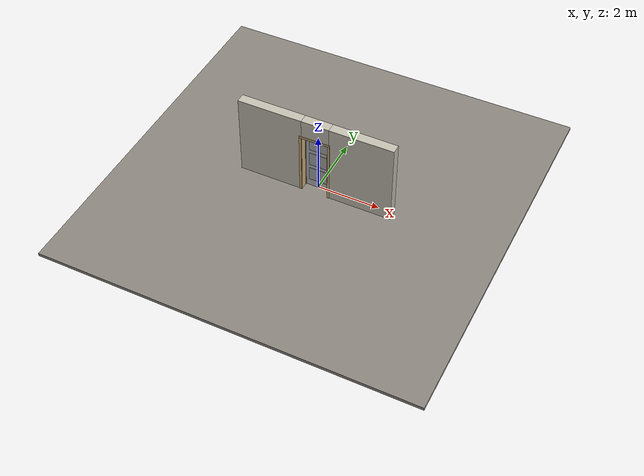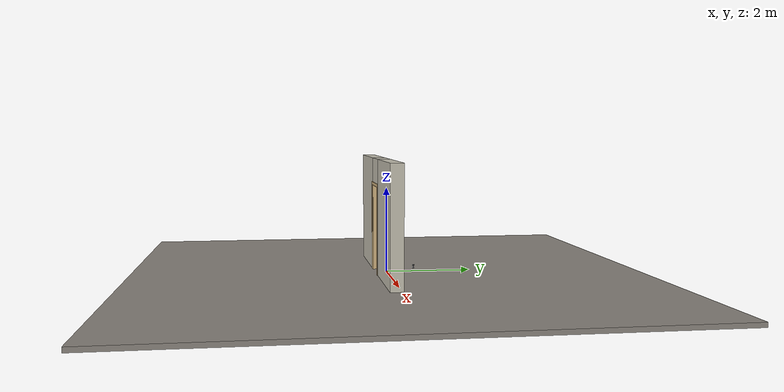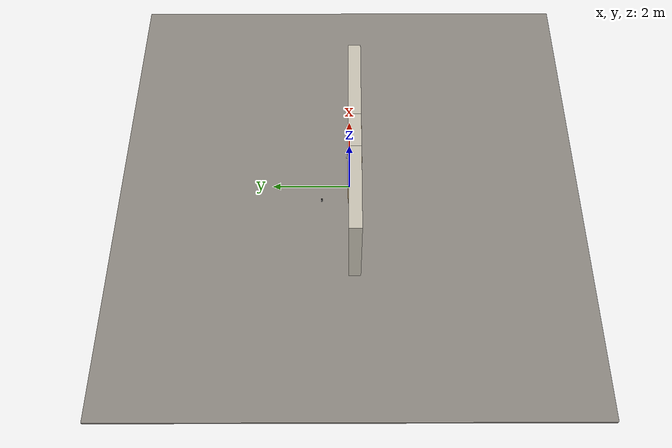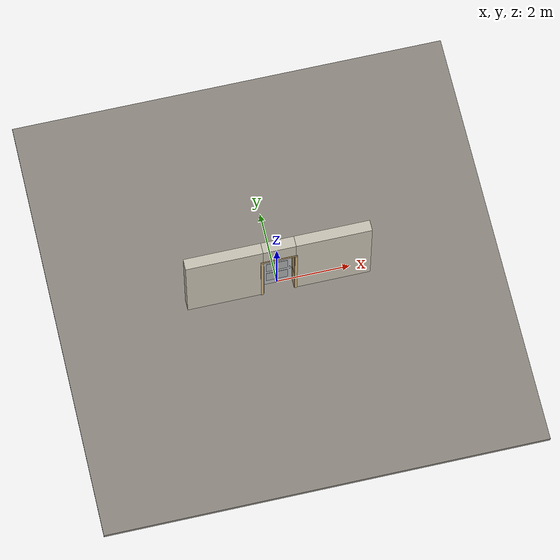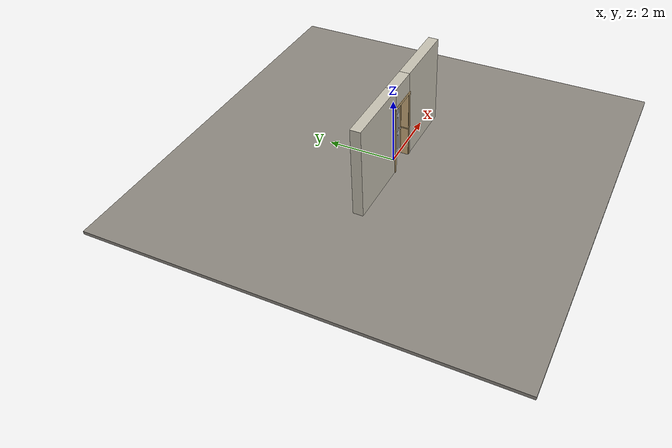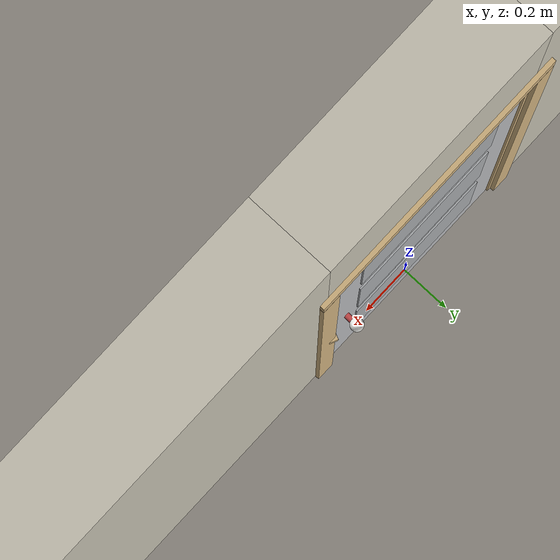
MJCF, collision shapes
<?xml version="1.0" ?>
<mujoco model="db0938_swing_single_full">
  <compiler angle="radian" meshdir="../../hardware" texturedir="../../textures" autolimits="true" inertiafromgeom="false"/>
  <option timestep="0.002" integrator="implicitfast" cone="elliptic" impratio="10" noslip_iterations="3">
    <flag multiccd="enable"/>
  </option>
  <size memory="16M"/>
  <default>
    <geom condim="4" solref="0.005 1" solimp="0.95 0.99 0.001"/>
    <joint solreflimit="0.005 1" solimplimit="0.95 0.99 0.001"/>
    <tendon solreflimit="0.005 1"/>
    <equality solref="0.002 1"/>
  </default>
  <visual>
    <headlight ambient="0.4 0.4 0.4" diffuse="0.7 0.7 0.7" specular="0.2 0.2 0.2"/>
    <quality shadowsize="4096"/>
    <map znear="0.01" zfar="60"/>
  </visual>
  <asset>
    <mesh name="hinge_96510cf394" file="hinge_96510cf394.obj"/>
    <mesh name="hinge_jamb_7fd4ca52b2" file="hinge_jamb_7fd4ca52b2.obj"/>
    <mesh name="knob_d6523d5571" file="knob_d6523d5571.obj"/>
    <material name="mat_floor" rgba="0.55 0.53 0.5 1" specular="0.2" shininess="0.15" reflectance="0"/>
    <material name="mat_wall" rgba="0.78 0.76 0.7 1" specular="0.2" shininess="0.1" reflectance="0"/>
    <material name="mat_leaf" rgba="0.72 0.73 0.74 1" specular="0.2" shininess="0.36" reflectance="0"/>
    <material name="mat_leaf_panel" rgba="0.662 0.672 0.681 1" specular="0.2" shininess="0.36" reflectance="0"/>
    <material name="mat_hinge" rgba="0.65 0.66 0.68 1" specular="0.74" shininess="0.5" reflectance="0.36"/>
    <material name="mat_op_pvc" rgba="0.92 0.92 0.9 1" specular="0.2" shininess="0.6" reflectance="0"/>
    <material name="mat_trim" rgba="0.85 0.66 0.3 1" specular="0.8" shininess="0.75" reflectance="0.4"/>
    <material name="mat_bolt" rgba="0.85 0.66 0.3 1" specular="0.8" shininess="0.75" reflectance="0.4"/>
    <material name="mat_frame" rgba="0.82 0.7 0.5 1" specular="0.2" shininess="0.45" reflectance="0"/>
    <material name="mat_bumper_stop" rgba="0.08 0.08 0.08 1" specular="0.2" shininess="0.1" reflectance="0"/>
    <material name="mat_stop_base" rgba="0.9 0.9 0.92 1" specular="0.8" shininess="0.9" reflectance="0.4"/>
    <texture name="skybox" type="skybox" builtin="gradient" rgb1="0.6 0.7 0.85" rgb2="0.9 0.92 0.95" width="256" height="256"/>
  </asset>
  <worldbody>
    <light name="sun" pos="1.5 -2.5 4" dir="-0.3 0.5 -0.8" directional="true" diffuse="0.8 0.8 0.8" specular="0.3 0.3 0.3" castshadow="true"/>
    <light name="fill" pos="-1.5 2.5 3" dir="0.3 -0.5 -0.7" directional="true" diffuse="0.35 0.35 0.4" castshadow="false"/>
    <camera name="robot_view" pos="0 -2.667687 1.734312" xyaxes="1 0 0 0 0.26963 0.962964" fovy="52"/>
    <camera name="far_view" pos="0 2.416687 1.734312" xyaxes="-1 0 0 0 -0.26963 0.962964" fovy="52"/>
    <camera name="iso" pos="1.932062 -2.260938 2.141063" xyaxes="0.741536 0.670913 0 -0.242917 0.268487 0.932151" fovy="46"/>
    <camera name="detail_handle" pos="0.526 -0.864 1.194" xyaxes="0.97561 0.219512 0 -0.070934 0.315262 0.94635" fovy="38"/>
    <geom name="floor" type="box" size="6 6 0.05" pos="0 0 -0.05" material="mat_floor" group="0" contype="1" conaffinity="1" friction="0.8 0.005 0.0001" density="2400"/>
    <geom name="wall_left" type="box" size="1.0355 0.15 1.35" pos="-1.4645 -0.1255 1.35" material="mat_wall" group="0" contype="1" conaffinity="1" friction="0.6 0.005 0.0001" density="800"/>
    <geom name="wall_right" type="box" size="1.0205 0.15 1.35" pos="1.4795 -0.1255 1.35" material="mat_wall" group="0" contype="1" conaffinity="1" friction="0.6 0.005 0.0001" density="800"/>
    <geom name="wall_header" type="box" size="0.444 0.15 0.303" pos="0.015 -0.1255 2.397" material="mat_wall" group="0" contype="1" conaffinity="1" friction="0.6 0.005 0.0001" density="800"/>
    <geom name="hinge_0_jamb" type="mesh" mesh="hinge_jamb_7fd4ca52b2" pos="-0.407 0.0245 0.259" quat="0 1 0 0" material="mat_hinge" group="1" contype="0" conaffinity="0" density="7850"/>
    <geom name="hinge_1_jamb" type="mesh" mesh="hinge_jamb_7fd4ca52b2" pos="-0.407 0.0245 1.861" quat="0 1 0 0" material="mat_hinge" group="1" contype="0" conaffinity="0" density="7850"/>
    <geom name="jamb_hinge" type="box" size="0.0095 0.15 1.0225" pos="-0.4195 -0.1255 1.0225" material="mat_frame" group="0" contype="1" conaffinity="1" friction="0.6 0.005 0.0001" density="400"/>
    <geom name="strike_914_wall_n" type="box" size="0.0245 0.133825 0.0167" pos="0.4345 -0.141675 0.914" material="mat_frame" group="0" contype="1" conaffinity="1" friction="0.6 0.005 0.0001" density="400"/>
    <geom name="strike_914_wall_p" type="box" size="0.0245 0.008 0.0167" pos="0.4345 0.01585 0.914" material="mat_frame" group="0" contype="1" conaffinity="1" friction="0.6 0.005 0.0001" density="400"/>
    <geom name="strike_914_ramp" type="box" size="0.0245 0.01649 0.0167" pos="0.439136 0.028673 0.914" quat="0.977148 0 0 -0.212558" material="mat_frame" group="0" contype="1" conaffinity="1" friction="0.12 0.005 0.0001" density="400"/>
    <geom name="strike_914_back" type="box" size="0.01615 0.00785 0.0167" pos="0.44285 0 0.914" material="mat_frame" group="0" contype="1" conaffinity="1" friction="0.6 0.005 0.0001" density="400"/>
    <geom name="jamb_strike_0" type="box" size="0.0245 0.15 0.44865" pos="0.4345 -0.1255 0.44865" material="mat_frame" group="0" contype="1" conaffinity="1" friction="0.6 0.005 0.0001" density="400"/>
    <geom name="jamb_strike_1" type="box" size="0.0245 0.15 0.55715" pos="0.4345 -0.1255 1.48785" material="mat_frame" group="0" contype="1" conaffinity="1" friction="0.6 0.005 0.0001" density="400"/>
    <geom name="jamb_head" type="box" size="0.444 0.15 0.0095" pos="0.015 -0.1255 2.0545" material="mat_frame" group="0" contype="1" conaffinity="1" friction="0.6 0.005 0.0001" density="400"/>
    <geom name="head_stud" type="box" size="0.444 0.15 0.015" pos="0.015 -0.1255 2.079" material="mat_wall" group="0" contype="1" conaffinity="1" friction="0.6 0.005 0.0001" density="500"/>
    <geom name="stop_hinge" type="box" size="0.0055 0.016 1.0225" pos="-0.4045 -0.034 1.0225" material="mat_frame" group="0" contype="1" conaffinity="1" friction="0.6 0.005 0.0001" density="400"/>
    <geom name="stop_strike" type="box" size="0.0055 0.016 1.0225" pos="0.4045 -0.034 1.0225" material="mat_frame" group="0" contype="1" conaffinity="1" friction="0.6 0.005 0.0001" density="400"/>
    <geom name="stop_head" type="box" size="0.41 0.016 0.0055" pos="0 -0.034 2.0395" material="mat_frame" group="0" contype="1" conaffinity="1" friction="0.6 0.005 0.0001" density="400"/>
    <geom name="casing_l_n" type="box" size="0.035 0.008 1.032" pos="-0.459 -0.2835 1.0225" material="mat_frame" group="2" contype="0" conaffinity="0" density="400"/>
    <geom name="casing_r_n" type="box" size="0.035 0.008 1.032" pos="0.459 -0.2835 1.0225" material="mat_frame" group="2" contype="0" conaffinity="0" density="400"/>
    <geom name="casing_h_n" type="box" size="0.494 0.008 0.035" pos="0 -0.2835 2.094" material="mat_frame" group="2" contype="0" conaffinity="0" density="400"/>
    <geom name="casing_l_p" type="box" size="0.035 0.008 1.032" pos="-0.459 0.0325 1.0225" material="mat_frame" group="2" contype="0" conaffinity="0" density="400"/>
    <geom name="casing_r_p" type="box" size="0.035 0.008 1.032" pos="0.459 0.0325 1.0225" material="mat_frame" group="2" contype="0" conaffinity="0" density="400"/>
    <geom name="casing_h_p" type="box" size="0.494 0.008 0.035" pos="0 0.0325 2.094" material="mat_frame" group="2" contype="0" conaffinity="0" density="400"/>
    <geom name="door_stop_base" type="cylinder" size="0.022 0.003" pos="-0.423 0.71555 0.003" material="mat_stop_base" group="0" contype="1" conaffinity="1" friction="0.6 0.005 0.0001" density="7850"/>
    <geom name="door_stop_post" type="cylinder" size="0.012 0.0245" pos="-0.423 0.71555 0.0305" material="mat_stop_base" group="0" contype="1" conaffinity="1" friction="0.6 0.005 0.0001" density="7850"/>
    <geom name="door_stop_bumper" type="cylinder" size="0.022 0.02" pos="-0.423 0.71555 0.075" material="mat_bumper_stop" group="0" contype="1" conaffinity="1" friction="0.6 0.005 0.0001" density="1100"/>
    <site name="approach_point" pos="0 -1.5 0" quat="1 0 0 0" size="0.05" rgba="0.2 0.9 0.2 0.5" group="4"/>
    <site name="goal_point" pos="0 1.5 0" quat="1 0 0 0" size="0.05" rgba="0.2 0.9 0.2 0.5" group="4"/>
    <site name="door_plane_center" pos="0 0 1.0225" quat="1 0 0 0" size="0.02" rgba="0.2 0.9 0.2 0.5" group="4"/>
    <body name="leaf" pos="-0.41 0 0">
      <inertial pos="0.400814 0.000329 1.025713" mass="11.897654" quat="0.499748 0.500871 0.499112 -0.500267" diaginertia="0.686451366 4.169828178 4.853707054"/>
      <joint name="leaf_hinge" type="hinge" axis="0 0 1" pos="0.003 0.0245 0" limited="true" range="0 1.570796" damping="0.210326" frictionloss="0.162645" armature="0.02"/>
      <geom name="leaf_slab" type="box" size="0.4065 0.0175 1.016" pos="0.4095 0 1.025" material="mat_leaf" group="0" contype="1" conaffinity="1" friction="0.35 0.005 0.0001" density="1"/>
      <geom name="leaf_panel_0_n" type="box" size="0.2965 0.003 0.23448" pos="0.4095 -0.0205 0.487" material="mat_leaf_panel" group="1" contype="0" conaffinity="0" density="1"/>
      <geom name="leaf_panel_0_p" type="box" size="0.2965 0.003 0.23448" pos="0.4095 0.0205 0.487" material="mat_leaf_panel" group="1" contype="0" conaffinity="0" density="1"/>
      <geom name="leaf_panel_1_n" type="box" size="0.2965 0.003 0.23448" pos="0.4095 -0.0205 1.08596" material="mat_leaf_panel" group="1" contype="0" conaffinity="0" density="1"/>
      <geom name="leaf_panel_1_p" type="box" size="0.2965 0.003 0.23448" pos="0.4095 0.0205 1.08596" material="mat_leaf_panel" group="1" contype="0" conaffinity="0" density="1"/>
      <geom name="leaf_panel_2_n" type="box" size="0.2965 0.003 0.23448" pos="0.4095 -0.0205 1.68492" material="mat_leaf_panel" group="1" contype="0" conaffinity="0" density="1"/>
      <geom name="leaf_panel_2_p" type="box" size="0.2965 0.003 0.23448" pos="0.4095 0.0205 1.68492" material="mat_leaf_panel" group="1" contype="0" conaffinity="0" density="1"/>
      <geom name="hinge_0" type="mesh" mesh="hinge_96510cf394" pos="0.003 0.0245 0.259" quat="0 1 0 0" material="mat_hinge" group="1" contype="0" conaffinity="0" density="7850"/>
      <geom name="hinge_1" type="mesh" mesh="hinge_96510cf394" pos="0.003 0.0245 1.861" quat="0 1 0 0" material="mat_hinge" group="1" contype="0" conaffinity="0" density="7850"/>
      <geom name="leaf_latch_bolt_faceplate" type="box" size="0.0006 0.01235 0.0267" pos="0.8154 0 0.914" material="mat_bolt" group="1" contype="0" conaffinity="0" density="8500"/>
      <site name="leaf_edge_mid" pos="0.816 0 1.016" quat="1 0 0 0" size="0.02" rgba="0.2 0.9 0.2 0.5" group="4"/>
      <body name="leaf_handle" pos="0.756 0 0.914">
        <inertial pos="0 0 0" mass="3.575149" quat="0.5 0.5 0.5 0.5" diaginertia="0.003579626 0.012911038 0.012911038"/>
        <joint name="leaf_handle_hinge" type="hinge" axis="0 -1 0" limited="true" range="0 0.87" damping="0.164801" frictionloss="0.039" stiffness="0.5" springref="-0.5" armature="0.01"/>
        <geom name="leaf_handle_spindle" type="cylinder" size="0.006 0.0255" pos="0 0 0" quat="0.707107 -0.707107 0 0" material="mat_op_pvc" group="1" contype="0" conaffinity="0" density="7850"/>
        <geom name="leaf_handle_knob_n" type="mesh" mesh="knob_d6523d5571" pos="0 -0.0175 0" quat="0.707107 0.707107 0 0" material="mat_op_pvc" group="1" contype="0" conaffinity="0" density="3000"/>
        <geom name="leaf_handle_knob_col_n" type="sphere" size="0.0243" pos="0 -0.064 0" material="mat_op_pvc" group="0" contype="1" conaffinity="1" friction="0.15 0.01 0.0001" density="3000"/>
        <geom name="leaf_handle_knob_neck_n" type="cylinder" size="0.011 0.012" pos="0 -0.0295 0" quat="0.707107 -0.707107 0 0" material="mat_op_pvc" group="3" contype="1" conaffinity="1" rgba="0.8 0.3 0.3 0.25" friction="0.6 0.005 0.0001" density="3000"/>
        <geom name="leaf_handle_knob_p" type="mesh" mesh="knob_d6523d5571" pos="0 0.0175 0" quat="-0.707107 0.707107 0 0" material="mat_op_pvc" group="1" contype="0" conaffinity="0" density="3000"/>
        <geom name="leaf_handle_knob_col_p" type="sphere" size="0.0243" pos="0 0.064 0" material="mat_op_pvc" group="0" contype="1" conaffinity="1" friction="0.15 0.01 0.0001" density="3000"/>
        <geom name="leaf_handle_knob_neck_p" type="cylinder" size="0.011 0.012" pos="0 0.0295 0" quat="0.707107 -0.707107 0 0" material="mat_op_pvc" group="3" contype="1" conaffinity="1" rgba="0.8 0.3 0.3 0.25" friction="0.6 0.005 0.0001" density="3000"/>
        <site name="leaf_handle_grip_n" pos="0 -0.064 0" quat="1 0 0 0" size="0.012" rgba="0.2 0.9 0.2 0.5" group="4"/>
        <site name="leaf_handle_grip_p" pos="0 0.064 0" quat="1 0 0 0" size="0.012" rgba="0.2 0.9 0.2 0.5" group="4"/>
      </body>
      <body name="leaf_latch_bolt" pos="0.816 0 0.914">
        <inertial pos="-0.00865 0 0" mass="0.041419" quat="0.92388 -0.382683 0 0" diaginertia="0.000000798 0.000005598 0.000005598"/>
        <joint name="leaf_latch_bolt_slide" type="slide" axis="-1 0 0" limited="true" range="0 0.0127" damping="2" frictionloss="0.3" stiffness="300" springref="-0.008333" armature="0.1"/>
        <geom name="leaf_latch_bolt_capsule" type="capsule" size="0.00635 0.015" pos="-0.00865 0 0" quat="0.707107 0 0.707107 0" material="mat_bolt" group="0" contype="1" conaffinity="1" friction="0.2 0.005 0.0001" density="8500"/>
      </body>
    </body>
  </worldbody>
  <tendon>
    <fixed name="leaf_latch_bolt_coupling" limited="true" range="0 10">
      <joint joint="leaf_latch_bolt_slide" coef="1"/>
      <joint joint="leaf_handle_hinge" coef="-0.015679"/>
    </fixed>
  </tendon>
  <sensor>
    <jointpos name="leaf_hinge_pos" joint="leaf_hinge"/>
    <jointvel name="leaf_hinge_vel" joint="leaf_hinge"/>
    <jointpos name="leaf_handle_hinge_pos" joint="leaf_handle_hinge"/>
    <jointvel name="leaf_handle_hinge_vel" joint="leaf_handle_hinge"/>
    <jointpos name="leaf_latch_bolt_slide_pos" joint="leaf_latch_bolt_slide"/>
    <jointvel name="leaf_latch_bolt_slide_vel" joint="leaf_latch_bolt_slide"/>
  </sensor>
</mujoco>
